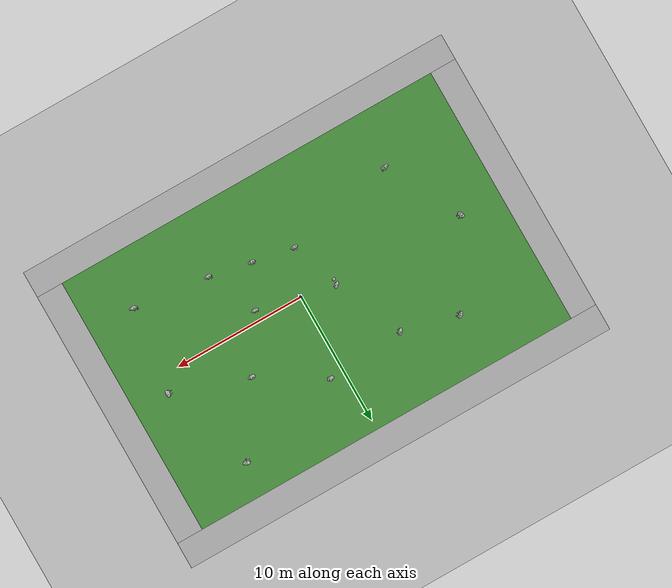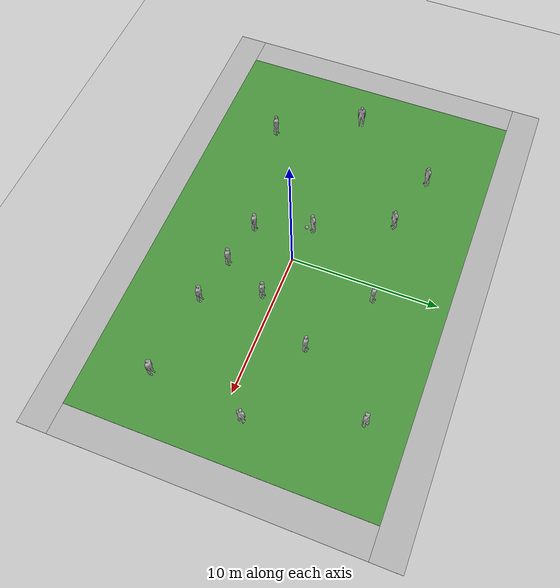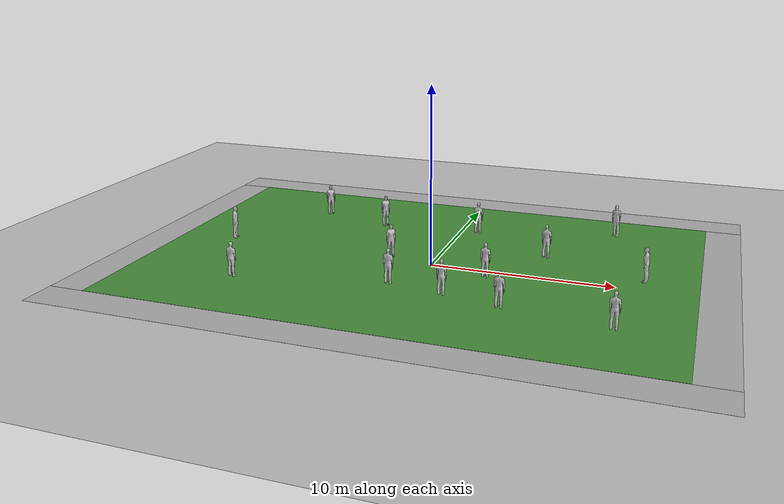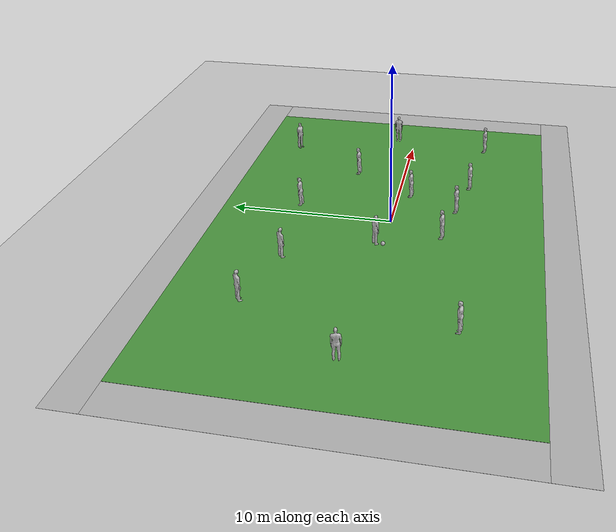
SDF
<sdf version="1.6">
 <world name="default">
  <light name="sun" type="directional">
   <pose>0 0 10 0 -0 0</pose>
   <diffuse>0.8 0.8 0.8 1</diffuse>
   <specular>0.2 0.2 0.2 1</specular>
   <attenuation>
    <range>1000</range>
    <constant>0.9</constant>
    <linear>0.01</linear>
    <quadratic>0.001</quadratic>
   </attenuation>
   <direction>-0.5 0.1 -0.9</direction>
  </light>
  <model name="ground_plane">
   <static>1</static>
   <link name="link">
    <collision name="collision">
     <geometry><plane><normal>0 0 1</normal><size>100 100</size></plane></geometry>
     <surface>
      <contact><collide_bitmask>65535</collide_bitmask></contact>
      <friction><ode><mu>100</mu><mu2>50</mu2></ode></friction>
     </surface>
    </collision>
    <visual name="visual">
     <cast_shadows>0</cast_shadows>
     <geometry><plane><normal>0 0 1</normal><size>100 100</size></plane></geometry>
     <material>
      <script><uri>file://media/materials/scripts/gazebo.material</uri><name>Gazebo/Grey</name></script>
     </material>
    </visual>
   </link>
  </model>
  <gravity>0 0 -9.8</gravity>
  <magnetic_field>6e-06 2.3e-05 -4.2e-05</magnetic_field>
  <atmosphere type="adiabatic"/>
  <physics name="default_physics" default="0" type="ode">
   <max_step_size>0.001</max_step_size>
   <real_time_factor>1</real_time_factor>
   <real_time_update_rate>1000</real_time_update_rate>
  </physics>
  <scene><ambient>0.4 0.4 0.4 1</ambient><background>0.7 0.7 0.7 1</background><shadows>1</shadows></scene>
  <audio><device>default</device></audio>
  <spherical_coordinates>
   <surface_model>EARTH_WGS84</surface_model>
   <latitude_deg>0</latitude_deg>
   <longitude_deg>0</longitude_deg>
   <elevation>0</elevation>
   <heading_deg>0</heading_deg>
  </spherical_coordinates>
  <model name="robocup_3d_field">
   <static>1</static>
   <link name="field">
    <pose>0 0 0.01 0 -0 0</pose>
    <collision name="collision">
     <geometry><plane><normal>0 0 1</normal><size>30 20</size></plane></geometry>
     <surface><friction><ode><mu>100</mu><mu2>50</mu2></ode></friction></surface>
    </collision>
    <visual name="base1">
     <pose>0 11 0.001 0 -0 0</pose>
     <cast_shadows>0</cast_shadows>
     <geometry><plane><normal>0 0 1</normal><size>34 2</size></plane></geometry>
     <material>
      <script>
       <uri>model://robocup_3Dsim_field/materials/scripts/</uri>
       <uri>model://robocup_3Dsim_field/materials/textures/</uri>
       <name>RoboCup/FieldBorder</name>
      </script>
     </material>
    </visual>
    <visual name="base2">
     <pose>0 -11 0.001 0 -0 0</pose>
     <cast_shadows>0</cast_shadows>
     <geometry><plane><normal>0 0 1</normal><size>34 2</size></plane></geometry>
     <material>
      <script>
       <uri>model://robocup_3Dsim_field/materials/scripts/</uri>
       <uri>model://robocup_3Dsim_field/materials/textures/</uri>
       <name>RoboCup/FieldBorder</name>
      </script>
     </material>
    </visual>
    <visual name="base3">
     <pose>16 0 0.001 0 -0 0</pose>
     <cast_shadows>0</cast_shadows>
     <geometry><plane><normal>0 0 1</normal><size>2 20</size></plane></geometry>
     <material>
      <script>
       <uri>model://robocup_3Dsim_field/materials/scripts/</uri>
       <uri>model://robocup_3Dsim_field/materials/textures/</uri>
       <name>RoboCup/FieldBorder</name>
      </script>
     </material>
    </visual>
    <visual name="base4">
     <pose>-16 0 0.001 0 -0 0</pose>
     <cast_shadows>0</cast_shadows>
     <geometry><plane><normal>0 0 1</normal><size>2 20</size></plane></geometry>
     <material>
      <script>
       <uri>model://robocup_3Dsim_field/materials/scripts/</uri>
       <uri>model://robocup_3Dsim_field/materials/textures/</uri>
       <name>RoboCup/FieldBorder</name>
      </script>
     </material>
    </visual>
    <visual name="carpet">
     <cast_shadows>0</cast_shadows>
     <geometry><plane><normal>0 0 1</normal><size>30 20</size></plane></geometry>
     <material>
      <script>
       <uri>model://robocup_3Dsim_field/materials/scripts/</uri>
       <uri>model://robocup_3Dsim_field/materials/textures/</uri>
       <name>RoboCup/Grass</name>
      </script>
     </material>
    </visual>
   </link>
   <pose>-0.79932 0.768395 0 0 -0 0</pose>
  </model>
  <model name="frc2016_ball">
   <pose>-2.61999 0.034113 0.136334 0 -0 0</pose>
   <link name="link">
    <inertial>
     <mass>0.213</mass>
     <inertia>
      <ixx>0.00322667</ixx>
      <ixy>0</ixy>
      <ixz>0</ixz>
      <iyy>0.00322667</iyy>
      <iyz>0</iyz>
      <izz>0.00322667</izz>
     </inertia>
    </inertial>
    <visual name="visual"><geometry><sphere><radius>0.127</radius></sphere></geometry></visual>
    <collision name="collision">
     <geometry><sphere><radius>0.127</radius></sphere></geometry>
     <surface>
      <bounce><restitution_coefficient>0.15937</restitution_coefficient><threshold>0</threshold></bounce>
      <contact><ode><max_vel>100</max_vel><min_depth>0.001</min_depth></ode></contact>
     </surface>
    </collision>
   </link>
  </model>
  <model name="person_standing">
   <link name="link">
    <inertial>
     <pose>0 -0.1 0.95 0 -0 0</pose>
     <mass>80</mass>
     <inertia><ixx>24.88</ixx><ixy>0</ixy><ixz>0</ixz><iyy>25.73</iyy><iyz>0</iyz><izz>2.48</izz></inertia>
    </inertial>
    <collision name="bottom">
     <pose>0 -0.1 0.01 0 -0 0</pose>
     <geometry><box><size>0.5 0.35 0.02</size></box></geometry>
    </collision>
    <collision name="person">
     <pose>0 0 0.02 0.04 -0 0</pose>
     <geometry><mesh><uri>model://person_standing/meshes/standing.dae</uri></mesh></geometry>
    </collision>
    <visual name="visual">
     <pose>0 0 0.02 0.04 -0 0</pose>
     <geometry><mesh><uri>model://person_standing/meshes/standing.dae</uri></mesh></geometry>
    </visual>
   </link>
   <pose>-2.61513 0.552457 0.01 0 1e-06 0.752028</pose>
  </model>
  <model name="person_standing_0">
   <link name="link">
    <inertial>
     <pose>0 -0.1 0.95 0 -0 0</pose>
     <mass>80</mass>
     <inertia><ixx>24.88</ixx><ixy>0</ixy><ixz>0</ixz><iyy>25.73</iyy><iyz>0</iyz><izz>2.48</izz></inertia>
    </inertial>
    <collision name="bottom">
     <pose>0 -0.1 0.01 0 -0 0</pose>
     <geometry><box><size>0.5 0.35 0.02</size></box></geometry>
    </collision>
    <collision name="person">
     <pose>0 0 0.02 0.04 -0 0</pose>
     <geometry><mesh><uri>model://person_standing/meshes/standing.dae</uri></mesh></geometry>
    </collision>
    <visual name="visual">
     <pose>0 0 0.02 0.04 -0 0</pose>
     <geometry><mesh><uri>model://person_standing/meshes/standing.dae</uri></mesh></geometry>
    </visual>
   </link>
   <pose>-1.31336 -3.32642 0.01 1e-06 1e-06 2.99404</pose>
  </model>
  <model name="person_standing_0_clone">
   <link name="link">
    <inertial>
     <pose>0 -0.1 0.95 0 -0 0</pose>
     <mass>80</mass>
     <inertia><ixx>24.88</ixx><ixy>0</ixy><ixz>0</ixz><iyy>25.73</iyy><iyz>0</iyz><izz>2.48</izz></inertia>
    </inertial>
    <collision name="bottom">
     <pose>0 -0.1 0.01 0 -0 0</pose>
     <geometry><box><size>0.5 0.35 0.02</size></box></geometry>
    </collision>
    <collision name="person">
     <pose>0 0 0.02 0.04 -0 0</pose>
     <geometry><mesh><uri>model://person_standing/meshes/standing.dae</uri></mesh></geometry>
    </collision>
    <visual name="visual">
     <pose>0 0 0.02 0.04 -0 0</pose>
     <geometry><mesh><uri>model://person_standing/meshes/standing.dae</uri></mesh></geometry>
    </visual>
   </link>
   <pose>1.77534 -3.90352 0.01 1e-06 -1e-06 2.99204</pose>
  </model>
  <model name="person_standing_0_clone_0">
   <link name="link">
    <inertial>
     <pose>0 -0.1 0.95 0 -0 0</pose>
     <mass>80</mass>
     <inertia><ixx>24.88</ixx><ixy>0</ixy><ixz>0</ixz><iyy>25.73</iyy><iyz>0</iyz><izz>2.48</izz></inertia>
    </inertial>
    <collision name="bottom">
     <pose>0 -0.1 0.01 0 -0 0</pose>
     <geometry><box><size>0.5 0.35 0.02</size></box></geometry>
    </collision>
    <collision name="person">
     <pose>0 0 0.02 0.04 -0 0</pose>
     <geometry><mesh><uri>model://person_standing/meshes/standing.dae</uri></mesh></geometry>
    </collision>
    <visual name="visual">
     <pose>0 0 0.02 0.04 -0 0</pose>
     <geometry><mesh><uri>model://person_standing/meshes/standing.dae</uri></mesh></geometry>
    </visual>
   </link>
   <pose>3.25802 -0.863376 0.01 1e-06 -1e-06 2.99275</pose>
  </model>
  <model name="person_standing_0_clone_1">
   <link name="link">
    <inertial>
     <pose>0 -0.1 0.95 0 -0 0</pose>
     <mass>80</mass>
     <inertia><ixx>24.88</ixx><ixy>0</ixy><ixz>0</ixz><iyy>25.73</iyy><iyz>0</iyz><izz>2.48</izz></inertia>
    </inertial>
    <collision name="bottom">
     <pose>0 -0.1 0.01 0 -0 0</pose>
     <geometry><box><size>0.5 0.35 0.02</size></box></geometry>
    </collision>
    <collision name="person">
     <pose>0 0 0.02 0.04 -0 0</pose>
     <geometry><mesh><uri>model://person_standing/meshes/standing.dae</uri></mesh></geometry>
    </collision>
    <visual name="visual">
     <pose>0 0 0.02 0.04 -0 0</pose>
     <geometry><mesh><uri>model://person_standing/meshes/standing.dae</uri></mesh></geometry>
    </visual>
   </link>
   <pose>4.91853 -4.52289 0.01 1e-06 -1e-06 2.99352</pose>
  </model>
  <model name="person_standing_0_clone_2">
   <link name="link">
    <inertial>
     <pose>0 -0.1 0.95 0 -0 0</pose>
     <mass>80</mass>
     <inertia><ixx>24.88</ixx><ixy>0</ixy><ixz>0</ixz><iyy>25.73</iyy><iyz>0</iyz><izz>2.48</izz></inertia>
    </inertial>
    <collision name="bottom">
     <pose>0 -0.1 0.01 0 -0 0</pose>
     <geometry><box><size>0.5 0.35 0.02</size></box></geometry>
    </collision>
    <collision name="person">
     <pose>0 0 0.02 0.04 -0 0</pose>
     <geometry><mesh><uri>model://person_standing/meshes/standing.dae</uri></mesh></geometry>
    </collision>
    <visual name="visual">
     <pose>0 0 0.02 0.04 -0 0</pose>
     <geometry><mesh><uri>model://person_standing/meshes/standing.dae</uri></mesh></geometry>
    </visual>
   </link>
   <pose>5.7575 3.06053 0.01 -1e-06 -1e-06 2.9935</pose>
  </model>
  <model name="person_standing_0_clone_3">
   <link name="link">
    <inertial>
     <pose>0 -0.1 0.95 0 -0 0</pose>
     <mass>80</mass>
     <inertia><ixx>24.88</ixx><ixy>0</ixy><ixz>0</ixz><iyy>25.73</iyy><iyz>0</iyz><izz>2.48</izz></inertia>
    </inertial>
    <collision name="bottom">
     <pose>0 -0.1 0.01 0 -0 0</pose>
     <geometry><box><size>0.5 0.35 0.02</size></box></geometry>
    </collision>
    <collision name="person">
     <pose>0 0 0.02 0.04 -0 0</pose>
     <geometry><mesh><uri>model://person_standing/meshes/standing.dae</uri></mesh></geometry>
    </collision>
    <visual name="visual">
     <pose>0 0 0.02 0.04 -0 0</pose>
     <geometry><mesh><uri>model://person_standing/meshes/standing.dae</uri></mesh></geometry>
    </visual>
   </link>
   <pose>1.02287 5.88268 0.009999 -1e-06 -1e-06 2.99324</pose>
  </model>
  <model name="person_standing_0_clone_4">
   <link name="link">
    <inertial>
     <pose>0 -0.1 0.95 0 -0 0</pose>
     <mass>80</mass>
     <inertia><ixx>24.88</ixx><ixy>0</ixy><ixz>0</ixz><iyy>25.73</iyy><iyz>0</iyz><izz>2.48</izz></inertia>
    </inertial>
    <collision name="bottom">
     <pose>0 -0.1 0.01 0 -0 0</pose>
     <geometry><box><size>0.5 0.35 0.02</size></box></geometry>
    </collision>
    <collision name="person">
     <pose>0 0 0.02 0.04 -0 0</pose>
     <geometry><mesh><uri>model://person_standing/meshes/standing.dae</uri></mesh></geometry>
    </collision>
    <visual name="visual">
     <pose>0 0 0.02 0.04 -0 0</pose>
     <geometry><mesh><uri>model://person_standing/meshes/standing.dae</uri></mesh></geometry>
    </visual>
   </link>
   <pose>-4.8651 5.56379 0.01 1e-06 -1e-06 0.820373</pose>
  </model>
  <model name="person_standing_0_clone_5">
   <link name="link">
    <inertial>
     <pose>0 -0.1 0.95 0 -0 0</pose>
     <mass>80</mass>
     <inertia><ixx>24.88</ixx><ixy>0</ixy><ixz>0</ixz><iyy>25.73</iyy><iyz>0</iyz><izz>2.48</izz></inertia>
    </inertial>
    <collision name="bottom">
     <pose>0 -0.1 0.01 0 -0 0</pose>
     <geometry><box><size>0.5 0.35 0.02</size></box></geometry>
    </collision>
    <collision name="person">
     <pose>0 0 0.02 0.04 -0 0</pose>
     <geometry><mesh><uri>model://person_standing/meshes/standing.dae</uri></mesh></geometry>
    </collision>
    <visual name="visual">
     <pose>0 0 0.02 0.04 -0 0</pose>
     <geometry><mesh><uri>model://person_standing/meshes/standing.dae</uri></mesh></geometry>
    </visual>
   </link>
   <pose>-12.6076 0.525364 0.01 0 1e-06 1.75613</pose>
  </model>
  <model name="person_standing_0_clone_6">
   <link name="link">
    <inertial>
     <pose>0 -0.1 0.95 0 -0 0</pose>
     <mass>80</mass>
     <inertia><ixx>24.88</ixx><ixy>0</ixy><ixz>0</ixz><iyy>25.73</iyy><iyz>0</iyz><izz>2.48</izz></inertia>
    </inertial>
    <collision name="bottom">
     <pose>0 -0.1 0.01 0 -0 0</pose>
     <geometry><box><size>0.5 0.35 0.02</size></box></geometry>
    </collision>
    <collision name="person">
     <pose>0 0 0.02 0.04 -0 0</pose>
     <geometry><mesh><uri>model://person_standing/meshes/standing.dae</uri></mesh></geometry>
    </collision>
    <visual name="visual">
     <pose>0 0 0.02 0.04 -0 0</pose>
     <geometry><mesh><uri>model://person_standing/meshes/standing.dae</uri></mesh></geometry>
    </visual>
   </link>
   <pose>11.4813 1.24811 0.009999 -1e-06 1e-06 -1.70694</pose>
  </model>
  <model name="person_standing_0_clone_7">
   <link name="link">
    <inertial>
     <pose>0 -0.1 0.95 0 -0 0</pose>
     <mass>80</mass>
     <inertia><ixx>24.88</ixx><ixy>0</ixy><ixz>0</ixz><iyy>25.73</iyy><iyz>0</iyz><izz>2.48</izz></inertia>
    </inertial>
    <collision name="bottom">
     <pose>0 -0.1 0.01 0 -0 0</pose>
     <geometry><box><size>0.5 0.35 0.02</size></box></geometry>
    </collision>
    <collision name="person">
     <pose>0 0 0.02 0.04 -0 0</pose>
     <geometry><mesh><uri>model://person_standing/meshes/standing.dae</uri></mesh></geometry>
    </collision>
    <visual name="visual">
     <pose>0 0 0.02 0.04 -0 0</pose>
     <geometry><mesh><uri>model://person_standing/meshes/standing.dae</uri></mesh></geometry>
    </visual>
   </link>
   <pose>-9.56563 -5.05868 0.01 0 1e-06 2.99375</pose>
  </model>
  <model name="person_standing_0_clone_8">
   <link name="link">
    <inertial>
     <pose>0 -0.1 0.95 0 -0 0</pose>
     <mass>80</mass>
     <inertia><ixx>24.88</ixx><ixy>0</ixy><ixz>0</ixz><iyy>25.73</iyy><iyz>0</iyz><izz>2.48</izz></inertia>
    </inertial>
    <collision name="bottom">
     <pose>0 -0.1 0.01 0 -0 0</pose>
     <geometry><box><size>0.5 0.35 0.02</size></box></geometry>
    </collision>
    <collision name="person">
     <pose>0 0 0.02 0.04 -0 0</pose>
     <geometry><mesh><uri>model://person_standing/meshes/standing.dae</uri></mesh></geometry>
    </collision>
    <visual name="visual">
     <pose>0 0 0.02 0.04 -0 0</pose>
     <geometry><mesh><uri>model://person_standing/meshes/standing.dae</uri></mesh></geometry>
    </visual>
   </link>
   <pose>10.5456 -5.20361 0.009999 -1e-06 -2e-06 2.99383</pose>
  </model>
  <model name="person_standing_0_clone_9">
   <link name="link">
    <inertial>
     <pose>0 -0.1 0.95 0 -0 0</pose>
     <mass>80</mass>
     <inertia><ixx>24.88</ixx><ixy>0</ixy><ixz>0</ixz><iyy>25.73</iyy><iyz>0</iyz><izz>2.48</izz></inertia>
    </inertial>
    <collision name="bottom">
     <pose>0 -0.1 0.01 0 -0 0</pose>
     <geometry><box><size>0.5 0.35 0.02</size></box></geometry>
    </collision>
    <collision name="person">
     <pose>0 0 0.02 0.04 -0 0</pose>
     <geometry><mesh><uri>model://person_standing/meshes/standing.dae</uri></mesh></geometry>
    </collision>
    <visual name="visual">
     <pose>0 0 0.02 0.04 -0 0</pose>
     <geometry><mesh><uri>model://person_standing/meshes/standing.dae</uri></mesh></geometry>
    </visual>
   </link>
   <pose>9.06678 8.22302 0.009999 -1e-06 1e-06 -0.534199</pose>
  </model>
  <model name="person_standing_0_clone_10">
   <link name="link">
    <inertial>
     <pose>0 -0.1 0.95 0 -0 0</pose>
     <mass>80</mass>
     <inertia><ixx>24.88</ixx><ixy>0</ixy><ixz>0</ixz><iyy>25.73</iyy><iyz>0</iyz><izz>2.48</izz></inertia>
    </inertial>
    <collision name="bottom">
     <pose>0 -0.1 0.01 0 -0 0</pose>
     <geometry><box><size>0.5 0.35 0.02</size></box></geometry>
    </collision>
    <collision name="person">
     <pose>0 0 0.02 0.04 -0 0</pose>
     <geometry><mesh><uri>model://person_standing/meshes/standing.dae</uri></mesh></geometry>
    </collision>
    <visual name="visual">
     <pose>0 0 0.02 0.04 -0 0</pose>
     <geometry><mesh><uri>model://person_standing/meshes/standing.dae</uri></mesh></geometry>
    </visual>
   </link>
   <pose>-9.07915 6.63301 0.01 1e-06 1e-06 0.716199</pose>
  </model>
 </world>
</sdf>
